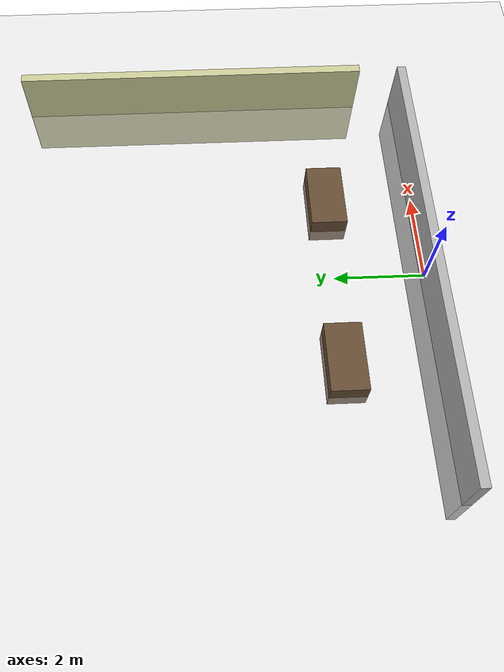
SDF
<?xml version="1.0"?>
<sdf version="1.6">
  <world name="office_building">
    <include>
      <uri>model://sun</uri>
    </include>

    <include>
      <uri>model://ground_plane</uri>
    </include>

    <!-- Office Room 1 -->
    <model name="office_wall_1">
      <static>true</static>
      <pose>0 0 0 0 0 0</pose>
      <link name="link">
        <collision name="collision">
          <geometry>
            <box>
              <size>10 0.2 2.5</size>
            </box>
          </geometry>
        </collision>
        <visual name="visual">
          <geometry>
            <box>
              <size>10 0.2 2.5</size>
            </box>
          </geometry>
          <material>
            <ambient>0.7 0.7 0.7 1</ambient>
          </material>
        </visual>
      </link>
    </model>

    <!-- Corridor walls -->
    <model name="corridor_wall_1">
      <static>true</static>
      <pose>5 5 0 0 0 1.5708</pose>
      <link name="link">
        <collision name="collision">
          <geometry>
            <box>
              <size>8 0.2 2.5</size>
            </box>
          </geometry>
        </collision>
        <visual name="visual">
          <geometry>
            <box>
              <size>8 0.2 2.5</size>
            </box>
          </geometry>
          <material>
            <ambient>0.8 0.8 0.6 1</ambient>
          </material>
        </visual>
      </link>
    </model>

    <!-- Office desks -->
    <model name="desk_1">
      <static>true</static>
      <pose>2 2 0 0 0 0</pose>
      <link name="link">
        <collision name="collision">
          <geometry>
            <box>
              <size>1.5 0.8 0.75</size>
            </box>
          </geometry>
        </collision>
        <visual name="visual">
          <geometry>
            <box>
              <size>1.5 0.8 0.75</size>
            </box>
          </geometry>
          <material>
            <ambient>0.4 0.3 0.2 1</ambient>
          </material>
        </visual>
      </link>
    </model>

    <model name="desk_2">
      <static>true</static>
      <pose>-2 2 0 0 0 0</pose>
      <link name="link">
        <collision name="collision">
          <geometry>
            <box>
              <size>1.5 0.8 0.75</size>
            </box>
          </geometry>
        </collision>
        <visual name="visual">
          <geometry>
            <box>
              <size>1.5 0.8 0.75</size>
            </box>
          </geometry>
          <material>
            <ambient>0.4 0.3 0.2 1</ambient>
          </material>
        </visual>
      </link>
    </model>

    <physics type="ode">
      <real_time_update_rate>1000.0</real_time_update_rate>
      <max_step_size>0.001</max_step_size>
    </physics>
  </world>
</sdf>
